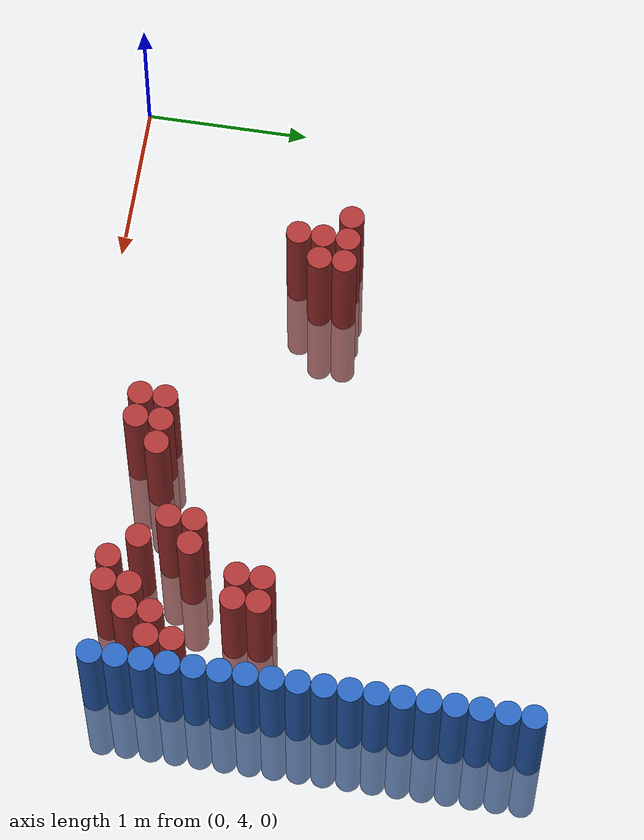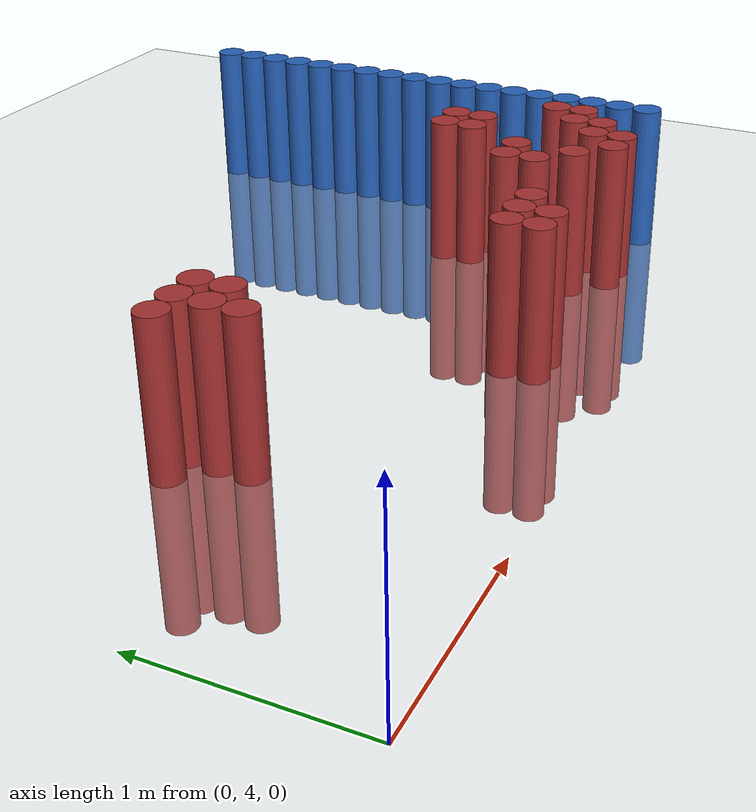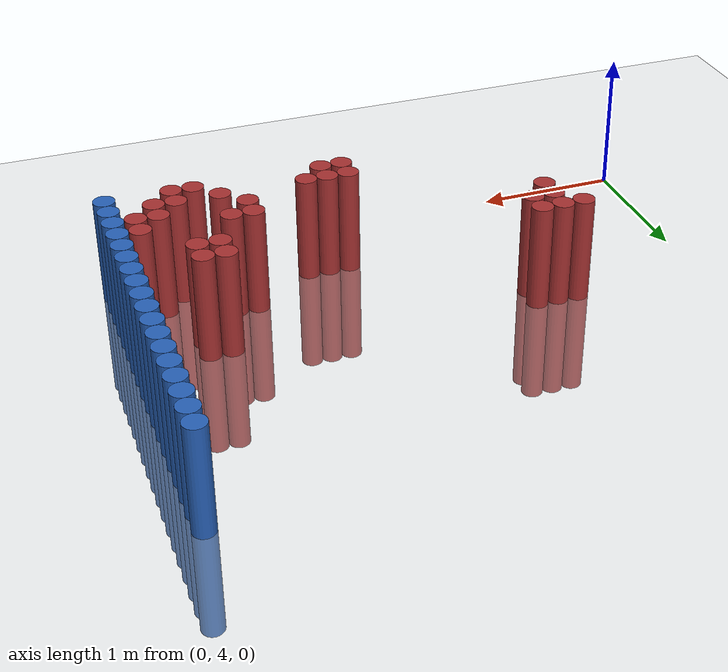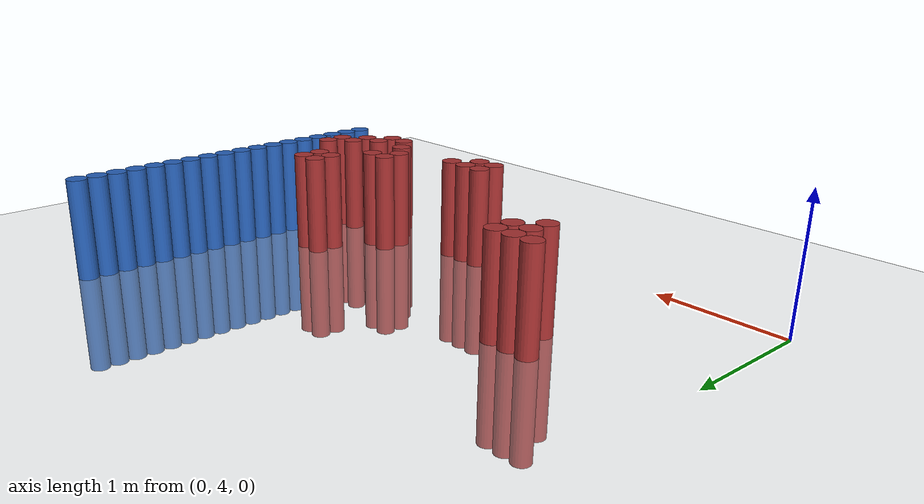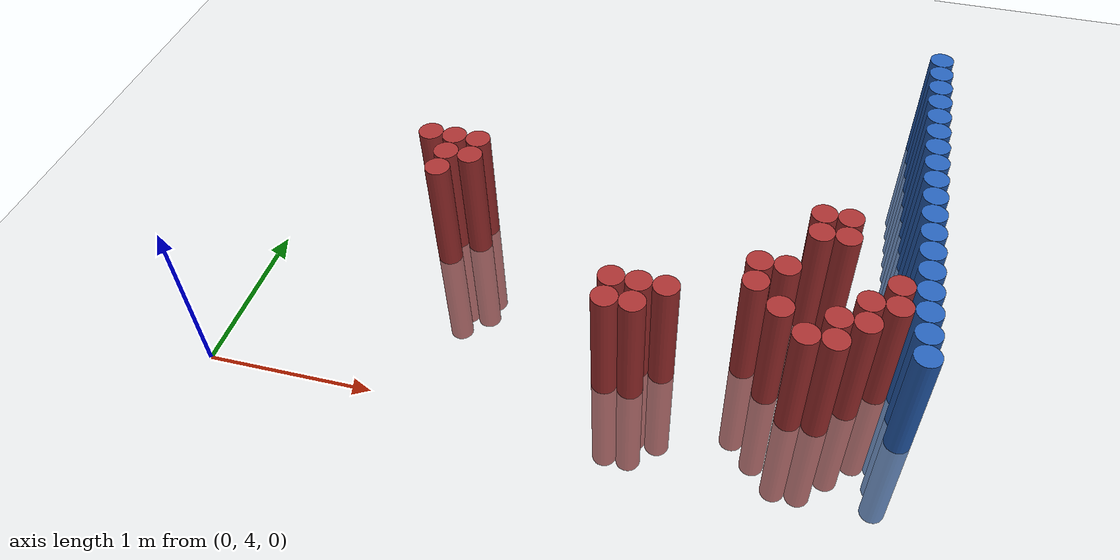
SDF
<sdf version="1.6">
 <world name="default">
  <model name="ground_plane">
   <static>1</static>
   <link name="link">
    <collision name="collision">
     <geometry><plane><normal>0 0 1</normal><size>100 100</size></plane></geometry>
     <surface><friction><ode><mu>100</mu><mu2>50</mu2></ode></friction></surface>
    </collision>
    <visual name="visual">
     <cast_shadows>0</cast_shadows>
     <geometry><plane><normal>0 0 1</normal><size>100 100</size></plane></geometry>
     <material>
      <script><uri>file://media/materials/scripts/gazebo.material</uri><name>Gazebo/Grey</name></script>
     </material>
    </visual>
   </link>
  </model>
  <model name="unit_cylinder_172">
   <static>1</static>
   <pose>3.925000 4.375000 0.000000 0.000000 0.000000 0.000000</pose>
   <link name="link">
    <inertial>
     <mass>1</mass>
     <inertia><ixx>0.145833</ixx><ixy>0</ixy><ixz>0</ixz><iyy>0.145833</iyy><iyz>0</iyz><izz>0.125</izz></inertia>
    </inertial>
    <collision name="collision">
     <geometry><cylinder><radius>0.075000</radius><length>1.5</length></cylinder></geometry>
    </collision>
    <visual name="visual">
     <geometry><cylinder><radius>0.075000</radius><length>1.5</length></cylinder></geometry>
     <material>
      <ambient>0.152000 0.379000 0.720000 1</ambient>
      <diffuse>0.152000 0.379000 0.720000 1</diffuse>
     </material>
     <material>
      <script><name>Gazebo/Grey</name><uri>file://media/materials/scripts/gazebo.material</uri></script>
     </material>
    </visual>
   </link>
  </model>
  <model name="unit_cylinder_174">
   <static>1</static>
   <pose>3.925000 4.525000 0.000000 0.000000 0.000000 0.000000</pose>
   <link name="link">
    <inertial>
     <mass>1</mass>
     <inertia><ixx>0.145833</ixx><ixy>0</ixy><ixz>0</ixz><iyy>0.145833</iyy><iyz>0</iyz><izz>0.125</izz></inertia>
    </inertial>
    <collision name="collision">
     <geometry><cylinder><radius>0.075000</radius><length>1.5</length></cylinder></geometry>
    </collision>
    <visual name="visual">
     <geometry><cylinder><radius>0.075000</radius><length>1.5</length></cylinder></geometry>
     <material>
      <ambient>0.152000 0.379000 0.720000 1</ambient>
      <diffuse>0.152000 0.379000 0.720000 1</diffuse>
     </material>
     <material>
      <script><name>Gazebo/Grey</name><uri>file://media/materials/scripts/gazebo.material</uri></script>
     </material>
    </visual>
   </link>
  </model>
  <model name="unit_cylinder_176">
   <static>1</static>
   <pose>3.925000 4.675000 0.000000 0.000000 0.000000 0.000000</pose>
   <link name="link">
    <inertial>
     <mass>1</mass>
     <inertia><ixx>0.145833</ixx><ixy>0</ixy><ixz>0</ixz><iyy>0.145833</iyy><iyz>0</iyz><izz>0.125</izz></inertia>
    </inertial>
    <collision name="collision">
     <geometry><cylinder><radius>0.075000</radius><length>1.5</length></cylinder></geometry>
    </collision>
    <visual name="visual">
     <geometry><cylinder><radius>0.075000</radius><length>1.5</length></cylinder></geometry>
     <material>
      <ambient>0.152000 0.379000 0.720000 1</ambient>
      <diffuse>0.152000 0.379000 0.720000 1</diffuse>
     </material>
     <material>
      <script><name>Gazebo/Grey</name><uri>file://media/materials/scripts/gazebo.material</uri></script>
     </material>
    </visual>
   </link>
  </model>
  <model name="unit_cylinder_178">
   <static>1</static>
   <pose>3.925000 4.825000 0.000000 0.000000 0.000000 0.000000</pose>
   <link name="link">
    <inertial>
     <mass>1</mass>
     <inertia><ixx>0.145833</ixx><ixy>0</ixy><ixz>0</ixz><iyy>0.145833</iyy><iyz>0</iyz><izz>0.125</izz></inertia>
    </inertial>
    <collision name="collision">
     <geometry><cylinder><radius>0.075000</radius><length>1.5</length></cylinder></geometry>
    </collision>
    <visual name="visual">
     <geometry><cylinder><radius>0.075000</radius><length>1.5</length></cylinder></geometry>
     <material>
      <ambient>0.152000 0.379000 0.720000 1</ambient>
      <diffuse>0.152000 0.379000 0.720000 1</diffuse>
     </material>
     <material>
      <script><name>Gazebo/Grey</name><uri>file://media/materials/scripts/gazebo.material</uri></script>
     </material>
    </visual>
   </link>
  </model>
  <model name="unit_cylinder_180">
   <static>1</static>
   <pose>3.925000 4.975000 0.000000 0.000000 0.000000 0.000000</pose>
   <link name="link">
    <inertial>
     <mass>1</mass>
     <inertia><ixx>0.145833</ixx><ixy>0</ixy><ixz>0</ixz><iyy>0.145833</iyy><iyz>0</iyz><izz>0.125</izz></inertia>
    </inertial>
    <collision name="collision">
     <geometry><cylinder><radius>0.075000</radius><length>1.5</length></cylinder></geometry>
    </collision>
    <visual name="visual">
     <geometry><cylinder><radius>0.075000</radius><length>1.5</length></cylinder></geometry>
     <material>
      <ambient>0.152000 0.379000 0.720000 1</ambient>
      <diffuse>0.152000 0.379000 0.720000 1</diffuse>
     </material>
     <material>
      <script><name>Gazebo/Grey</name><uri>file://media/materials/scripts/gazebo.material</uri></script>
     </material>
    </visual>
   </link>
  </model>
  <model name="unit_cylinder_182">
   <static>1</static>
   <pose>3.925000 5.125000 0.000000 0.000000 0.000000 0.000000</pose>
   <link name="link">
    <inertial>
     <mass>1</mass>
     <inertia><ixx>0.145833</ixx><ixy>0</ixy><ixz>0</ixz><iyy>0.145833</iyy><iyz>0</iyz><izz>0.125</izz></inertia>
    </inertial>
    <collision name="collision">
     <geometry><cylinder><radius>0.075000</radius><length>1.5</length></cylinder></geometry>
    </collision>
    <visual name="visual">
     <geometry><cylinder><radius>0.075000</radius><length>1.5</length></cylinder></geometry>
     <material>
      <ambient>0.152000 0.379000 0.720000 1</ambient>
      <diffuse>0.152000 0.379000 0.720000 1</diffuse>
     </material>
     <material>
      <script><name>Gazebo/Grey</name><uri>file://media/materials/scripts/gazebo.material</uri></script>
     </material>
    </visual>
   </link>
  </model>
  <model name="unit_cylinder_184">
   <static>1</static>
   <pose>3.925000 5.275000 0.000000 0.000000 0.000000 0.000000</pose>
   <link name="link">
    <inertial>
     <mass>1</mass>
     <inertia><ixx>0.145833</ixx><ixy>0</ixy><ixz>0</ixz><iyy>0.145833</iyy><iyz>0</iyz><izz>0.125</izz></inertia>
    </inertial>
    <collision name="collision">
     <geometry><cylinder><radius>0.075000</radius><length>1.5</length></cylinder></geometry>
    </collision>
    <visual name="visual">
     <geometry><cylinder><radius>0.075000</radius><length>1.5</length></cylinder></geometry>
     <material>
      <ambient>0.152000 0.379000 0.720000 1</ambient>
      <diffuse>0.152000 0.379000 0.720000 1</diffuse>
     </material>
     <material>
      <script><name>Gazebo/Grey</name><uri>file://media/materials/scripts/gazebo.material</uri></script>
     </material>
    </visual>
   </link>
  </model>
  <model name="unit_cylinder_186">
   <static>1</static>
   <pose>3.925000 5.425000 0.000000 0.000000 0.000000 0.000000</pose>
   <link name="link">
    <inertial>
     <mass>1</mass>
     <inertia><ixx>0.145833</ixx><ixy>0</ixy><ixz>0</ixz><iyy>0.145833</iyy><iyz>0</iyz><izz>0.125</izz></inertia>
    </inertial>
    <collision name="collision">
     <geometry><cylinder><radius>0.075000</radius><length>1.5</length></cylinder></geometry>
    </collision>
    <visual name="visual">
     <geometry><cylinder><radius>0.075000</radius><length>1.5</length></cylinder></geometry>
     <material>
      <ambient>0.152000 0.379000 0.720000 1</ambient>
      <diffuse>0.152000 0.379000 0.720000 1</diffuse>
     </material>
     <material>
      <script><name>Gazebo/Grey</name><uri>file://media/materials/scripts/gazebo.material</uri></script>
     </material>
    </visual>
   </link>
  </model>
  <model name="unit_cylinder_188">
   <static>1</static>
   <pose>3.925000 5.575000 0.000000 0.000000 0.000000 0.000000</pose>
   <link name="link">
    <inertial>
     <mass>1</mass>
     <inertia><ixx>0.145833</ixx><ixy>0</ixy><ixz>0</ixz><iyy>0.145833</iyy><iyz>0</iyz><izz>0.125</izz></inertia>
    </inertial>
    <collision name="collision">
     <geometry><cylinder><radius>0.075000</radius><length>1.5</length></cylinder></geometry>
    </collision>
    <visual name="visual">
     <geometry><cylinder><radius>0.075000</radius><length>1.5</length></cylinder></geometry>
     <material>
      <ambient>0.152000 0.379000 0.720000 1</ambient>
      <diffuse>0.152000 0.379000 0.720000 1</diffuse>
     </material>
     <material>
      <script><name>Gazebo/Grey</name><uri>file://media/materials/scripts/gazebo.material</uri></script>
     </material>
    </visual>
   </link>
  </model>
  <model name="unit_cylinder_190">
   <static>1</static>
   <pose>3.925000 5.725000 0.000000 0.000000 0.000000 0.000000</pose>
   <link name="link">
    <inertial>
     <mass>1</mass>
     <inertia><ixx>0.145833</ixx><ixy>0</ixy><ixz>0</ixz><iyy>0.145833</iyy><iyz>0</iyz><izz>0.125</izz></inertia>
    </inertial>
    <collision name="collision">
     <geometry><cylinder><radius>0.075000</radius><length>1.5</length></cylinder></geometry>
    </collision>
    <visual name="visual">
     <geometry><cylinder><radius>0.075000</radius><length>1.5</length></cylinder></geometry>
     <material>
      <ambient>0.152000 0.379000 0.720000 1</ambient>
      <diffuse>0.152000 0.379000 0.720000 1</diffuse>
     </material>
     <material>
      <script><name>Gazebo/Grey</name><uri>file://media/materials/scripts/gazebo.material</uri></script>
     </material>
    </visual>
   </link>
  </model>
  <model name="unit_cylinder_192">
   <static>1</static>
   <pose>3.925000 5.875000 0.000000 0.000000 0.000000 0.000000</pose>
   <link name="link">
    <inertial>
     <mass>1</mass>
     <inertia><ixx>0.145833</ixx><ixy>0</ixy><ixz>0</ixz><iyy>0.145833</iyy><iyz>0</iyz><izz>0.125</izz></inertia>
    </inertial>
    <collision name="collision">
     <geometry><cylinder><radius>0.075000</radius><length>1.5</length></cylinder></geometry>
    </collision>
    <visual name="visual">
     <geometry><cylinder><radius>0.075000</radius><length>1.5</length></cylinder></geometry>
     <material>
      <ambient>0.152000 0.379000 0.720000 1</ambient>
      <diffuse>0.152000 0.379000 0.720000 1</diffuse>
     </material>
     <material>
      <script><name>Gazebo/Grey</name><uri>file://media/materials/scripts/gazebo.material</uri></script>
     </material>
    </visual>
   </link>
  </model>
  <model name="unit_cylinder_194">
   <static>1</static>
   <pose>3.925000 6.025000 0.000000 0.000000 0.000000 0.000000</pose>
   <link name="link">
    <inertial>
     <mass>1</mass>
     <inertia><ixx>0.145833</ixx><ixy>0</ixy><ixz>0</ixz><iyy>0.145833</iyy><iyz>0</iyz><izz>0.125</izz></inertia>
    </inertial>
    <collision name="collision">
     <geometry><cylinder><radius>0.075000</radius><length>1.5</length></cylinder></geometry>
    </collision>
    <visual name="visual">
     <geometry><cylinder><radius>0.075000</radius><length>1.5</length></cylinder></geometry>
     <material>
      <ambient>0.152000 0.379000 0.720000 1</ambient>
      <diffuse>0.152000 0.379000 0.720000 1</diffuse>
     </material>
     <material>
      <script><name>Gazebo/Grey</name><uri>file://media/materials/scripts/gazebo.material</uri></script>
     </material>
    </visual>
   </link>
  </model>
  <model name="unit_cylinder_196">
   <static>1</static>
   <pose>3.925000 6.175000 0.000000 0.000000 0.000000 0.000000</pose>
   <link name="link">
    <inertial>
     <mass>1</mass>
     <inertia><ixx>0.145833</ixx><ixy>0</ixy><ixz>0</ixz><iyy>0.145833</iyy><iyz>0</iyz><izz>0.125</izz></inertia>
    </inertial>
    <collision name="collision">
     <geometry><cylinder><radius>0.075000</radius><length>1.5</length></cylinder></geometry>
    </collision>
    <visual name="visual">
     <geometry><cylinder><radius>0.075000</radius><length>1.5</length></cylinder></geometry>
     <material>
      <ambient>0.152000 0.379000 0.720000 1</ambient>
      <diffuse>0.152000 0.379000 0.720000 1</diffuse>
     </material>
     <material>
      <script><name>Gazebo/Grey</name><uri>file://media/materials/scripts/gazebo.material</uri></script>
     </material>
    </visual>
   </link>
  </model>
  <model name="unit_cylinder_198">
   <static>1</static>
   <pose>3.925000 6.325000 0.000000 0.000000 0.000000 0.000000</pose>
   <link name="link">
    <inertial>
     <mass>1</mass>
     <inertia><ixx>0.145833</ixx><ixy>0</ixy><ixz>0</ixz><iyy>0.145833</iyy><iyz>0</iyz><izz>0.125</izz></inertia>
    </inertial>
    <collision name="collision">
     <geometry><cylinder><radius>0.075000</radius><length>1.5</length></cylinder></geometry>
    </collision>
    <visual name="visual">
     <geometry><cylinder><radius>0.075000</radius><length>1.5</length></cylinder></geometry>
     <material>
      <ambient>0.152000 0.379000 0.720000 1</ambient>
      <diffuse>0.152000 0.379000 0.720000 1</diffuse>
     </material>
     <material>
      <script><name>Gazebo/Grey</name><uri>file://media/materials/scripts/gazebo.material</uri></script>
     </material>
    </visual>
   </link>
  </model>
  <model name="unit_cylinder_200">
   <static>1</static>
   <pose>3.925000 6.475000 0.000000 0.000000 0.000000 0.000000</pose>
   <link name="link">
    <inertial>
     <mass>1</mass>
     <inertia><ixx>0.145833</ixx><ixy>0</ixy><ixz>0</ixz><iyy>0.145833</iyy><iyz>0</iyz><izz>0.125</izz></inertia>
    </inertial>
    <collision name="collision">
     <geometry><cylinder><radius>0.075000</radius><length>1.5</length></cylinder></geometry>
    </collision>
    <visual name="visual">
     <geometry><cylinder><radius>0.075000</radius><length>1.5</length></cylinder></geometry>
     <material>
      <ambient>0.152000 0.379000 0.720000 1</ambient>
      <diffuse>0.152000 0.379000 0.720000 1</diffuse>
     </material>
     <material>
      <script><name>Gazebo/Grey</name><uri>file://media/materials/scripts/gazebo.material</uri></script>
     </material>
    </visual>
   </link>
  </model>
  <model name="unit_cylinder_202">
   <static>1</static>
   <pose>3.925000 6.625000 0.000000 0.000000 0.000000 0.000000</pose>
   <link name="link">
    <inertial>
     <mass>1</mass>
     <inertia><ixx>0.145833</ixx><ixy>0</ixy><ixz>0</ixz><iyy>0.145833</iyy><iyz>0</iyz><izz>0.125</izz></inertia>
    </inertial>
    <collision name="collision">
     <geometry><cylinder><radius>0.075000</radius><length>1.5</length></cylinder></geometry>
    </collision>
    <visual name="visual">
     <geometry><cylinder><radius>0.075000</radius><length>1.5</length></cylinder></geometry>
     <material>
      <ambient>0.152000 0.379000 0.720000 1</ambient>
      <diffuse>0.152000 0.379000 0.720000 1</diffuse>
     </material>
     <material>
      <script><name>Gazebo/Grey</name><uri>file://media/materials/scripts/gazebo.material</uri></script>
     </material>
    </visual>
   </link>
  </model>
  <model name="unit_cylinder_204">
   <static>1</static>
   <pose>3.925000 6.775000 0.000000 0.000000 0.000000 0.000000</pose>
   <link name="link">
    <inertial>
     <mass>1</mass>
     <inertia><ixx>0.145833</ixx><ixy>0</ixy><ixz>0</ixz><iyy>0.145833</iyy><iyz>0</iyz><izz>0.125</izz></inertia>
    </inertial>
    <collision name="collision">
     <geometry><cylinder><radius>0.075000</radius><length>1.5</length></cylinder></geometry>
    </collision>
    <visual name="visual">
     <geometry><cylinder><radius>0.075000</radius><length>1.5</length></cylinder></geometry>
     <material>
      <ambient>0.152000 0.379000 0.720000 1</ambient>
      <diffuse>0.152000 0.379000 0.720000 1</diffuse>
     </material>
     <material>
      <script><name>Gazebo/Grey</name><uri>file://media/materials/scripts/gazebo.material</uri></script>
     </material>
    </visual>
   </link>
  </model>
  <model name="unit_cylinder_206">
   <static>1</static>
   <pose>3.925000 6.925000 0.000000 0.000000 0.000000 0.000000</pose>
   <link name="link">
    <inertial>
     <mass>1</mass>
     <inertia><ixx>0.145833</ixx><ixy>0</ixy><ixz>0</ixz><iyy>0.145833</iyy><iyz>0</iyz><izz>0.125</izz></inertia>
    </inertial>
    <collision name="collision">
     <geometry><cylinder><radius>0.075000</radius><length>1.5</length></cylinder></geometry>
    </collision>
    <visual name="visual">
     <geometry><cylinder><radius>0.075000</radius><length>1.5</length></cylinder></geometry>
     <material>
      <ambient>0.152000 0.379000 0.720000 1</ambient>
      <diffuse>0.152000 0.379000 0.720000 1</diffuse>
     </material>
     <material>
      <script><name>Gazebo/Grey</name><uri>file://media/materials/scripts/gazebo.material</uri></script>
     </material>
    </visual>
   </link>
  </model>
  <model name="unit_cylinder_409">
   <static>1</static>
   <pose>0.925000 5.425000 0.000000 0.000000 0.000000 0.000000</pose>
   <link name="link">
    <inertial>
     <mass>1</mass>
     <inertia><ixx>0.145833</ixx><ixy>0</ixy><ixz>0</ixz><iyy>0.145833</iyy><iyz>0</iyz><izz>0.125</izz></inertia>
    </inertial>
    <collision name="collision">
     <geometry><cylinder><radius>0.075000</radius><length>1.5</length></cylinder></geometry>
    </collision>
    <visual name="visual">
     <geometry><cylinder><radius>0.075000</radius><length>1.5</length></cylinder></geometry>
     <material>
      <ambient>0.648000 0.192000 0.192000 1</ambient>
      <diffuse>0.648000 0.192000 0.192000 1</diffuse>
     </material>
     <material>
      <script><name>Gazebo/Grey</name><uri>file://media/materials/scripts/gazebo.material</uri></script>
     </material>
    </visual>
   </link>
  </model>
  <model name="unit_cylinder_411">
   <static>1</static>
   <pose>1.075000 5.125000 0.000000 0.000000 0.000000 0.000000</pose>
   <link name="link">
    <inertial>
     <mass>1</mass>
     <inertia><ixx>0.145833</ixx><ixy>0</ixy><ixz>0</ixz><iyy>0.145833</iyy><iyz>0</iyz><izz>0.125</izz></inertia>
    </inertial>
    <collision name="collision">
     <geometry><cylinder><radius>0.075000</radius><length>1.5</length></cylinder></geometry>
    </collision>
    <visual name="visual">
     <geometry><cylinder><radius>0.075000</radius><length>1.5</length></cylinder></geometry>
     <material>
      <ambient>0.648000 0.192000 0.192000 1</ambient>
      <diffuse>0.648000 0.192000 0.192000 1</diffuse>
     </material>
     <material>
      <script><name>Gazebo/Grey</name><uri>file://media/materials/scripts/gazebo.material</uri></script>
     </material>
    </visual>
   </link>
  </model>
  <model name="unit_cylinder_412">
   <static>1</static>
   <pose>1.075000 5.275000 0.000000 0.000000 0.000000 0.000000</pose>
   <link name="link">
    <inertial>
     <mass>1</mass>
     <inertia><ixx>0.145833</ixx><ixy>0</ixy><ixz>0</ixz><iyy>0.145833</iyy><iyz>0</iyz><izz>0.125</izz></inertia>
    </inertial>
    <collision name="collision">
     <geometry><cylinder><radius>0.075000</radius><length>1.5</length></cylinder></geometry>
    </collision>
    <visual name="visual">
     <geometry><cylinder><radius>0.075000</radius><length>1.5</length></cylinder></geometry>
     <material>
      <ambient>0.648000 0.192000 0.192000 1</ambient>
      <diffuse>0.648000 0.192000 0.192000 1</diffuse>
     </material>
     <material>
      <script><name>Gazebo/Grey</name><uri>file://media/materials/scripts/gazebo.material</uri></script>
     </material>
    </visual>
   </link>
  </model>
  <model name="unit_cylinder_413">
   <static>1</static>
   <pose>1.075000 5.425000 0.000000 0.000000 0.000000 0.000000</pose>
   <link name="link">
    <inertial>
     <mass>1</mass>
     <inertia><ixx>0.145833</ixx><ixy>0</ixy><ixz>0</ixz><iyy>0.145833</iyy><iyz>0</iyz><izz>0.125</izz></inertia>
    </inertial>
    <collision name="collision">
     <geometry><cylinder><radius>0.075000</radius><length>1.5</length></cylinder></geometry>
    </collision>
    <visual name="visual">
     <geometry><cylinder><radius>0.075000</radius><length>1.5</length></cylinder></geometry>
     <material>
      <ambient>0.648000 0.192000 0.192000 1</ambient>
      <diffuse>0.648000 0.192000 0.192000 1</diffuse>
     </material>
     <material>
      <script><name>Gazebo/Grey</name><uri>file://media/materials/scripts/gazebo.material</uri></script>
     </material>
    </visual>
   </link>
  </model>
  <model name="unit_cylinder_418">
   <static>1</static>
   <pose>1.225000 5.275000 0.000000 0.000000 0.000000 0.000000</pose>
   <link name="link">
    <inertial>
     <mass>1</mass>
     <inertia><ixx>0.145833</ixx><ixy>0</ixy><ixz>0</ixz><iyy>0.145833</iyy><iyz>0</iyz><izz>0.125</izz></inertia>
    </inertial>
    <collision name="collision">
     <geometry><cylinder><radius>0.075000</radius><length>1.5</length></cylinder></geometry>
    </collision>
    <visual name="visual">
     <geometry><cylinder><radius>0.075000</radius><length>1.5</length></cylinder></geometry>
     <material>
      <ambient>0.648000 0.192000 0.192000 1</ambient>
      <diffuse>0.648000 0.192000 0.192000 1</diffuse>
     </material>
     <material>
      <script><name>Gazebo/Grey</name><uri>file://media/materials/scripts/gazebo.material</uri></script>
     </material>
    </visual>
   </link>
  </model>
  <model name="unit_cylinder_419">
   <static>1</static>
   <pose>1.225000 5.425000 0.000000 0.000000 0.000000 0.000000</pose>
   <link name="link">
    <inertial>
     <mass>1</mass>
     <inertia><ixx>0.145833</ixx><ixy>0</ixy><ixz>0</ixz><iyy>0.145833</iyy><iyz>0</iyz><izz>0.125</izz></inertia>
    </inertial>
    <collision name="collision">
     <geometry><cylinder><radius>0.075000</radius><length>1.5</length></cylinder></geometry>
    </collision>
    <visual name="visual">
     <geometry><cylinder><radius>0.075000</radius><length>1.5</length></cylinder></geometry>
     <material>
      <ambient>0.648000 0.192000 0.192000 1</ambient>
      <diffuse>0.648000 0.192000 0.192000 1</diffuse>
     </material>
     <material>
      <script><name>Gazebo/Grey</name><uri>file://media/materials/scripts/gazebo.material</uri></script>
     </material>
    </visual>
   </link>
  </model>
  <model name="unit_cylinder_470">
   <static>1</static>
   <pose>2.275000 4.375000 0.000000 0.000000 0.000000 0.000000</pose>
   <link name="link">
    <inertial>
     <mass>1</mass>
     <inertia><ixx>0.145833</ixx><ixy>0</ixy><ixz>0</ixz><iyy>0.145833</iyy><iyz>0</iyz><izz>0.125</izz></inertia>
    </inertial>
    <collision name="collision">
     <geometry><cylinder><radius>0.075000</radius><length>1.5</length></cylinder></geometry>
    </collision>
    <visual name="visual">
     <geometry><cylinder><radius>0.075000</radius><length>1.5</length></cylinder></geometry>
     <material>
      <ambient>0.648000 0.192000 0.192000 1</ambient>
      <diffuse>0.648000 0.192000 0.192000 1</diffuse>
     </material>
     <material>
      <script><name>Gazebo/Grey</name><uri>file://media/materials/scripts/gazebo.material</uri></script>
     </material>
    </visual>
   </link>
  </model>
  <model name="unit_cylinder_471">
   <static>1</static>
   <pose>2.275000 4.525000 0.000000 0.000000 0.000000 0.000000</pose>
   <link name="link">
    <inertial>
     <mass>1</mass>
     <inertia><ixx>0.145833</ixx><ixy>0</ixy><ixz>0</ixz><iyy>0.145833</iyy><iyz>0</iyz><izz>0.125</izz></inertia>
    </inertial>
    <collision name="collision">
     <geometry><cylinder><radius>0.075000</radius><length>1.5</length></cylinder></geometry>
    </collision>
    <visual name="visual">
     <geometry><cylinder><radius>0.075000</radius><length>1.5</length></cylinder></geometry>
     <material>
      <ambient>0.648000 0.192000 0.192000 1</ambient>
      <diffuse>0.648000 0.192000 0.192000 1</diffuse>
     </material>
     <material>
      <script><name>Gazebo/Grey</name><uri>file://media/materials/scripts/gazebo.material</uri></script>
     </material>
    </visual>
   </link>
  </model>
  <model name="unit_cylinder_484">
   <static>1</static>
   <pose>2.425000 4.375000 0.000000 0.000000 0.000000 0.000000</pose>
   <link name="link">
    <inertial>
     <mass>1</mass>
     <inertia><ixx>0.145833</ixx><ixy>0</ixy><ixz>0</ixz><iyy>0.145833</iyy><iyz>0</iyz><izz>0.125</izz></inertia>
    </inertial>
    <collision name="collision">
     <geometry><cylinder><radius>0.075000</radius><length>1.5</length></cylinder></geometry>
    </collision>
    <visual name="visual">
     <geometry><cylinder><radius>0.075000</radius><length>1.5</length></cylinder></geometry>
     <material>
      <ambient>0.648000 0.192000 0.192000 1</ambient>
      <diffuse>0.648000 0.192000 0.192000 1</diffuse>
     </material>
     <material>
      <script><name>Gazebo/Grey</name><uri>file://media/materials/scripts/gazebo.material</uri></script>
     </material>
    </visual>
   </link>
  </model>
  <model name="unit_cylinder_485">
   <static>1</static>
   <pose>2.425000 4.525000 0.000000 0.000000 0.000000 0.000000</pose>
   <link name="link">
    <inertial>
     <mass>1</mass>
     <inertia><ixx>0.145833</ixx><ixy>0</ixy><ixz>0</ixz><iyy>0.145833</iyy><iyz>0</iyz><izz>0.125</izz></inertia>
    </inertial>
    <collision name="collision">
     <geometry><cylinder><radius>0.075000</radius><length>1.5</length></cylinder></geometry>
    </collision>
    <visual name="visual">
     <geometry><cylinder><radius>0.075000</radius><length>1.5</length></cylinder></geometry>
     <material>
      <ambient>0.648000 0.192000 0.192000 1</ambient>
      <diffuse>0.648000 0.192000 0.192000 1</diffuse>
     </material>
     <material>
      <script><name>Gazebo/Grey</name><uri>file://media/materials/scripts/gazebo.material</uri></script>
     </material>
    </visual>
   </link>
  </model>
  <model name="unit_cylinder_495">
   <static>1</static>
   <pose>2.575000 4.525000 0.000000 0.000000 0.000000 0.000000</pose>
   <link name="link">
    <inertial>
     <mass>1</mass>
     <inertia><ixx>0.145833</ixx><ixy>0</ixy><ixz>0</ixz><iyy>0.145833</iyy><iyz>0</iyz><izz>0.125</izz></inertia>
    </inertial>
    <collision name="collision">
     <geometry><cylinder><radius>0.075000</radius><length>1.5</length></cylinder></geometry>
    </collision>
    <visual name="visual">
     <geometry><cylinder><radius>0.075000</radius><length>1.5</length></cylinder></geometry>
     <material>
      <ambient>0.648000 0.192000 0.192000 1</ambient>
      <diffuse>0.648000 0.192000 0.192000 1</diffuse>
     </material>
     <material>
      <script><name>Gazebo/Grey</name><uri>file://media/materials/scripts/gazebo.material</uri></script>
     </material>
    </visual>
   </link>
  </model>
  <model name="unit_cylinder_505">
   <static>1</static>
   <pose>3.025000 4.675000 0.000000 0.000000 0.000000 0.000000</pose>
   <link name="link">
    <inertial>
     <mass>1</mass>
     <inertia><ixx>0.145833</ixx><ixy>0</ixy><ixz>0</ixz><iyy>0.145833</iyy><iyz>0</iyz><izz>0.125</izz></inertia>
    </inertial>
    <collision name="collision">
     <geometry><cylinder><radius>0.075000</radius><length>1.5</length></cylinder></geometry>
    </collision>
    <visual name="visual">
     <geometry><cylinder><radius>0.075000</radius><length>1.5</length></cylinder></geometry>
     <material>
      <ambient>0.648000 0.192000 0.192000 1</ambient>
      <diffuse>0.648000 0.192000 0.192000 1</diffuse>
     </material>
     <material>
      <script><name>Gazebo/Grey</name><uri>file://media/materials/scripts/gazebo.material</uri></script>
     </material>
    </visual>
   </link>
  </model>
  <model name="unit_cylinder_506">
   <static>1</static>
   <pose>3.025000 4.825000 0.000000 0.000000 0.000000 0.000000</pose>
   <link name="link">
    <inertial>
     <mass>1</mass>
     <inertia><ixx>0.145833</ixx><ixy>0</ixy><ixz>0</ixz><iyy>0.145833</iyy><iyz>0</iyz><izz>0.125</izz></inertia>
    </inertial>
    <collision name="collision">
     <geometry><cylinder><radius>0.075000</radius><length>1.5</length></cylinder></geometry>
    </collision>
    <visual name="visual">
     <geometry><cylinder><radius>0.075000</radius><length>1.5</length></cylinder></geometry>
     <material>
      <ambient>0.648000 0.192000 0.192000 1</ambient>
      <diffuse>0.648000 0.192000 0.192000 1</diffuse>
     </material>
     <material>
      <script><name>Gazebo/Grey</name><uri>file://media/materials/scripts/gazebo.material</uri></script>
     </material>
    </visual>
   </link>
  </model>
  <model name="unit_cylinder_514">
   <static>1</static>
   <pose>3.175000 4.525000 0.000000 0.000000 0.000000 0.000000</pose>
   <link name="link">
    <inertial>
     <mass>1</mass>
     <inertia><ixx>0.145833</ixx><ixy>0</ixy><ixz>0</ixz><iyy>0.145833</iyy><iyz>0</iyz><izz>0.125</izz></inertia>
    </inertial>
    <collision name="collision">
     <geometry><cylinder><radius>0.075000</radius><length>1.5</length></cylinder></geometry>
    </collision>
    <visual name="visual">
     <geometry><cylinder><radius>0.075000</radius><length>1.5</length></cylinder></geometry>
     <material>
      <ambient>0.648000 0.192000 0.192000 1</ambient>
      <diffuse>0.648000 0.192000 0.192000 1</diffuse>
     </material>
     <material>
      <script><name>Gazebo/Grey</name><uri>file://media/materials/scripts/gazebo.material</uri></script>
     </material>
    </visual>
   </link>
  </model>
  <model name="unit_cylinder_515">
   <static>1</static>
   <pose>3.175000 4.825000 0.000000 0.000000 0.000000 0.000000</pose>
   <link name="link">
    <inertial>
     <mass>1</mass>
     <inertia><ixx>0.145833</ixx><ixy>0</ixy><ixz>0</ixz><iyy>0.145833</iyy><iyz>0</iyz><izz>0.125</izz></inertia>
    </inertial>
    <collision name="collision">
     <geometry><cylinder><radius>0.075000</radius><length>1.5</length></cylinder></geometry>
    </collision>
    <visual name="visual">
     <geometry><cylinder><radius>0.075000</radius><length>1.5</length></cylinder></geometry>
     <material>
      <ambient>0.648000 0.192000 0.192000 1</ambient>
      <diffuse>0.648000 0.192000 0.192000 1</diffuse>
     </material>
     <material>
      <script><name>Gazebo/Grey</name><uri>file://media/materials/scripts/gazebo.material</uri></script>
     </material>
    </visual>
   </link>
  </model>
  <model name="unit_cylinder_523">
   <static>1</static>
   <pose>3.325000 4.375000 0.000000 0.000000 0.000000 0.000000</pose>
   <link name="link">
    <inertial>
     <mass>1</mass>
     <inertia><ixx>0.145833</ixx><ixy>0</ixy><ixz>0</ixz><iyy>0.145833</iyy><iyz>0</iyz><izz>0.125</izz></inertia>
    </inertial>
    <collision name="collision">
     <geometry><cylinder><radius>0.075000</radius><length>1.5</length></cylinder></geometry>
    </collision>
    <visual name="visual">
     <geometry><cylinder><radius>0.075000</radius><length>1.5</length></cylinder></geometry>
     <material>
      <ambient>0.648000 0.192000 0.192000 1</ambient>
      <diffuse>0.648000 0.192000 0.192000 1</diffuse>
     </material>
     <material>
      <script><name>Gazebo/Grey</name><uri>file://media/materials/scripts/gazebo.material</uri></script>
     </material>
    </visual>
   </link>
  </model>
  <model name="unit_cylinder_524">
   <static>1</static>
   <pose>3.325000 5.125000 0.000000 0.000000 0.000000 0.000000</pose>
   <link name="link">
    <inertial>
     <mass>1</mass>
     <inertia><ixx>0.145833</ixx><ixy>0</ixy><ixz>0</ixz><iyy>0.145833</iyy><iyz>0</iyz><izz>0.125</izz></inertia>
    </inertial>
    <collision name="collision">
     <geometry><cylinder><radius>0.075000</radius><length>1.5</length></cylinder></geometry>
    </collision>
    <visual name="visual">
     <geometry><cylinder><radius>0.075000</radius><length>1.5</length></cylinder></geometry>
     <material>
      <ambient>0.648000 0.192000 0.192000 1</ambient>
      <diffuse>0.648000 0.192000 0.192000 1</diffuse>
     </material>
     <material>
      <script><name>Gazebo/Grey</name><uri>file://media/materials/scripts/gazebo.material</uri></script>
     </material>
    </visual>
   </link>
  </model>
  <model name="unit_cylinder_525">
   <static>1</static>
   <pose>3.325000 5.275000 0.000000 0.000000 0.000000 0.000000</pose>
   <link name="link">
    <inertial>
     <mass>1</mass>
     <inertia><ixx>0.145833</ixx><ixy>0</ixy><ixz>0</ixz><iyy>0.145833</iyy><iyz>0</iyz><izz>0.125</izz></inertia>
    </inertial>
    <collision name="collision">
     <geometry><cylinder><radius>0.075000</radius><length>1.5</length></cylinder></geometry>
    </collision>
    <visual name="visual">
     <geometry><cylinder><radius>0.075000</radius><length>1.5</length></cylinder></geometry>
     <material>
      <ambient>0.648000 0.192000 0.192000 1</ambient>
      <diffuse>0.648000 0.192000 0.192000 1</diffuse>
     </material>
     <material>
      <script><name>Gazebo/Grey</name><uri>file://media/materials/scripts/gazebo.material</uri></script>
     </material>
    </visual>
   </link>
  </model>
  <model name="unit_cylinder_535">
   <static>1</static>
   <pose>3.475000 4.375000 0.000000 0.000000 0.000000 0.000000</pose>
   <link name="link">
    <inertial>
     <mass>1</mass>
     <inertia><ixx>0.145833</ixx><ixy>0</ixy><ixz>0</ixz><iyy>0.145833</iyy><iyz>0</iyz><izz>0.125</izz></inertia>
    </inertial>
    <collision name="collision">
     <geometry><cylinder><radius>0.075000</radius><length>1.5</length></cylinder></geometry>
    </collision>
    <visual name="visual">
     <geometry><cylinder><radius>0.075000</radius><length>1.5</length></cylinder></geometry>
     <material>
      <ambient>0.648000 0.192000 0.192000 1</ambient>
      <diffuse>0.648000 0.192000 0.192000 1</diffuse>
     </material>
     <material>
      <script><name>Gazebo/Grey</name><uri>file://media/materials/scripts/gazebo.material</uri></script>
     </material>
    </visual>
   </link>
  </model>
  <model name="unit_cylinder_536">
   <static>1</static>
   <pose>3.475000 4.525000 0.000000 0.000000 0.000000 0.000000</pose>
   <link name="link">
    <inertial>
     <mass>1</mass>
     <inertia><ixx>0.145833</ixx><ixy>0</ixy><ixz>0</ixz><iyy>0.145833</iyy><iyz>0</iyz><izz>0.125</izz></inertia>
    </inertial>
    <collision name="collision">
     <geometry><cylinder><radius>0.075000</radius><length>1.5</length></cylinder></geometry>
    </collision>
    <visual name="visual">
     <geometry><cylinder><radius>0.075000</radius><length>1.5</length></cylinder></geometry>
     <material>
      <ambient>0.648000 0.192000 0.192000 1</ambient>
      <diffuse>0.648000 0.192000 0.192000 1</diffuse>
     </material>
     <material>
      <script><name>Gazebo/Grey</name><uri>file://media/materials/scripts/gazebo.material</uri></script>
     </material>
    </visual>
   </link>
  </model>
  <model name="unit_cylinder_537">
   <static>1</static>
   <pose>3.475000 5.125000 0.000000 0.000000 0.000000 0.000000</pose>
   <link name="link">
    <inertial>
     <mass>1</mass>
     <inertia><ixx>0.145833</ixx><ixy>0</ixy><ixz>0</ixz><iyy>0.145833</iyy><iyz>0</iyz><izz>0.125</izz></inertia>
    </inertial>
    <collision name="collision">
     <geometry><cylinder><radius>0.075000</radius><length>1.5</length></cylinder></geometry>
    </collision>
    <visual name="visual">
     <geometry><cylinder><radius>0.075000</radius><length>1.5</length></cylinder></geometry>
     <material>
      <ambient>0.648000 0.192000 0.192000 1</ambient>
      <diffuse>0.648000 0.192000 0.192000 1</diffuse>
     </material>
     <material>
      <script><name>Gazebo/Grey</name><uri>file://media/materials/scripts/gazebo.material</uri></script>
     </material>
    </visual>
   </link>
  </model>
  <model name="unit_cylinder_538">
   <static>1</static>
   <pose>3.475000 5.275000 0.000000 0.000000 0.000000 0.000000</pose>
   <link name="link">
    <inertial>
     <mass>1</mass>
     <inertia><ixx>0.145833</ixx><ixy>0</ixy><ixz>0</ixz><iyy>0.145833</iyy><iyz>0</iyz><izz>0.125</izz></inertia>
    </inertial>
    <collision name="collision">
     <geometry><cylinder><radius>0.075000</radius><length>1.5</length></cylinder></geometry>
    </collision>
    <visual name="visual">
     <geometry><cylinder><radius>0.075000</radius><length>1.5</length></cylinder></geometry>
     <material>
      <ambient>0.648000 0.192000 0.192000 1</ambient>
      <diffuse>0.648000 0.192000 0.192000 1</diffuse>
     </material>
     <material>
      <script><name>Gazebo/Grey</name><uri>file://media/materials/scripts/gazebo.material</uri></script>
     </material>
    </visual>
   </link>
  </model>
  <model name="unit_cylinder_549">
   <static>1</static>
   <pose>3.625000 4.525000 0.000000 0.000000 0.000000 0.000000</pose>
   <link name="link">
    <inertial>
     <mass>1</mass>
     <inertia><ixx>0.145833</ixx><ixy>0</ixy><ixz>0</ixz><iyy>0.145833</iyy><iyz>0</iyz><izz>0.125</izz></inertia>
    </inertial>
    <collision name="collision">
     <geometry><cylinder><radius>0.075000</radius><length>1.5</length></cylinder></geometry>
    </collision>
    <visual name="visual">
     <geometry><cylinder><radius>0.075000</radius><length>1.5</length></cylinder></geometry>
     <material>
      <ambient>0.648000 0.192000 0.192000 1</ambient>
      <diffuse>0.648000 0.192000 0.192000 1</diffuse>
     </material>
     <material>
      <script><name>Gazebo/Grey</name><uri>file://media/materials/scripts/gazebo.material</uri></script>
     </material>
    </visual>
   </link>
  </model>
  <model name="unit_cylinder_550">
   <static>1</static>
   <pose>3.625000 4.675000 0.000000 0.000000 0.000000 0.000000</pose>
   <link name="link">
    <inertial>
     <mass>1</mass>
     <inertia><ixx>0.145833</ixx><ixy>0</ixy><ixz>0</ixz><iyy>0.145833</iyy><iyz>0</iyz><izz>0.125</izz></inertia>
    </inertial>
    <collision name="collision">
     <geometry><cylinder><radius>0.075000</radius><length>1.5</length></cylinder></geometry>
    </collision>
    <visual name="visual">
     <geometry><cylinder><radius>0.075000</radius><length>1.5</length></cylinder></geometry>
     <material>
      <ambient>0.648000 0.192000 0.192000 1</ambient>
      <diffuse>0.648000 0.192000 0.192000 1</diffuse>
     </material>
     <material>
      <script><name>Gazebo/Grey</name><uri>file://media/materials/scripts/gazebo.material</uri></script>
     </material>
    </visual>
   </link>
  </model>
  <model name="unit_cylinder_568">
   <static>1</static>
   <pose>3.775000 4.675000 0.000000 0.000000 0.000000 0.000000</pose>
   <link name="link">
    <inertial>
     <mass>1</mass>
     <inertia><ixx>0.145833</ixx><ixy>0</ixy><ixz>0</ixz><iyy>0.145833</iyy><iyz>0</iyz><izz>0.125</izz></inertia>
    </inertial>
    <collision name="collision">
     <geometry><cylinder><radius>0.075000</radius><length>1.5</length></cylinder></geometry>
    </collision>
    <visual name="visual">
     <geometry><cylinder><radius>0.075000</radius><length>1.5</length></cylinder></geometry>
     <material>
      <ambient>0.648000 0.192000 0.192000 1</ambient>
      <diffuse>0.648000 0.192000 0.192000 1</diffuse>
     </material>
     <material>
      <script><name>Gazebo/Grey</name><uri>file://media/materials/scripts/gazebo.material</uri></script>
     </material>
    </visual>
   </link>
  </model>
  <model name="unit_cylinder_569">
   <static>1</static>
   <pose>3.775000 4.825000 0.000000 0.000000 0.000000 0.000000</pose>
   <link name="link">
    <inertial>
     <mass>1</mass>
     <inertia><ixx>0.145833</ixx><ixy>0</ixy><ixz>0</ixz><iyy>0.145833</iyy><iyz>0</iyz><izz>0.125</izz></inertia>
    </inertial>
    <collision name="collision">
     <geometry><cylinder><radius>0.075000</radius><length>1.5</length></cylinder></geometry>
    </collision>
    <visual name="visual">
     <geometry><cylinder><radius>0.075000</radius><length>1.5</length></cylinder></geometry>
     <material>
      <ambient>0.648000 0.192000 0.192000 1</ambient>
      <diffuse>0.648000 0.192000 0.192000 1</diffuse>
     </material>
     <material>
      <script><name>Gazebo/Grey</name><uri>file://media/materials/scripts/gazebo.material</uri></script>
     </material>
    </visual>
   </link>
  </model>
  <model name="unit_cylinder_612">
   <static>1</static>
   <pose>3.925000 4.375000 0.000000 0.000000 0.000000 0.000000</pose>
   <link name="link">
    <inertial>
     <mass>1</mass>
     <inertia><ixx>0.145833</ixx><ixy>0</ixy><ixz>0</ixz><iyy>0.145833</iyy><iyz>0</iyz><izz>0.125</izz></inertia>
    </inertial>
    <collision name="collision">
     <geometry><cylinder><radius>0.075000</radius><length>1.5</length></cylinder></geometry>
    </collision>
    <visual name="visual">
     <geometry><cylinder><radius>0.075000</radius><length>1.5</length></cylinder></geometry>
     <material>
      <ambient>0.152000 0.379000 0.720000 1</ambient>
      <diffuse>0.152000 0.379000 0.720000 1</diffuse>
     </material>
     <material>
      <script><name>Gazebo/Grey</name><uri>file://media/materials/scripts/gazebo.material</uri></script>
     </material>
    </visual>
   </link>
  </model>
  <model name="unit_cylinder_613">
   <static>1</static>
   <pose>3.925000 4.525000 0.000000 0.000000 0.000000 0.000000</pose>
   <link name="link">
    <inertial>
     <mass>1</mass>
     <inertia><ixx>0.145833</ixx><ixy>0</ixy><ixz>0</ixz><iyy>0.145833</iyy><iyz>0</iyz><izz>0.125</izz></inertia>
    </inertial>
    <collision name="collision">
     <geometry><cylinder><radius>0.075000</radius><length>1.5</length></cylinder></geometry>
    </collision>
    <visual name="visual">
     <geometry><cylinder><radius>0.075000</radius><length>1.5</length></cylinder></geometry>
     <material>
      <ambient>0.152000 0.379000 0.720000 1</ambient>
      <diffuse>0.152000 0.379000 0.720000 1</diffuse>
     </material>
     <material>
      <script><name>Gazebo/Grey</name><uri>file://media/materials/scripts/gazebo.material</uri></script>
     </material>
    </visual>
   </link>
  </model>
  <model name="unit_cylinder_614">
   <static>1</static>
   <pose>3.925000 4.675000 0.000000 0.000000 0.000000 0.000000</pose>
   <link name="link">
    <inertial>
     <mass>1</mass>
     <inertia><ixx>0.145833</ixx><ixy>0</ixy><ixz>0</ixz><iyy>0.145833</iyy><iyz>0</iyz><izz>0.125</izz></inertia>
    </inertial>
    <collision name="collision">
     <geometry><cylinder><radius>0.075000</radius><length>1.5</length></cylinder></geometry>
    </collision>
    <visual name="visual">
     <geometry><cylinder><radius>0.075000</radius><length>1.5</length></cylinder></geometry>
     <material>
      <ambient>0.152000 0.379000 0.720000 1</ambient>
      <diffuse>0.152000 0.379000 0.720000 1</diffuse>
     </material>
     <material>
      <script><name>Gazebo/Grey</name><uri>file://media/materials/scripts/gazebo.material</uri></script>
     </material>
    </visual>
   </link>
  </model>
  <model name="unit_cylinder_615">
   <static>1</static>
   <pose>3.925000 4.825000 0.000000 0.000000 0.000000 0.000000</pose>
   <link name="link">
    <inertial>
     <mass>1</mass>
     <inertia><ixx>0.145833</ixx><ixy>0</ixy><ixz>0</ixz><iyy>0.145833</iyy><iyz>0</iyz><izz>0.125</izz></inertia>
    </inertial>
    <collision name="collision">
     <geometry><cylinder><radius>0.075000</radius><length>1.5</length></cylinder></geometry>
    </collision>
    <visual name="visual">
     <geometry><cylinder><radius>0.075000</radius><length>1.5</length></cylinder></geometry>
     <material>
      <ambient>0.152000 0.379000 0.720000 1</ambient>
      <diffuse>0.152000 0.379000 0.720000 1</diffuse>
     </material>
     <material>
      <script><name>Gazebo/Grey</name><uri>file://media/materials/scripts/gazebo.material</uri></script>
     </material>
    </visual>
   </link>
  </model>
  <model name="unit_cylinder_616">
   <static>1</static>
   <pose>3.925000 4.975000 0.000000 0.000000 0.000000 0.000000</pose>
   <link name="link">
    <inertial>
     <mass>1</mass>
     <inertia><ixx>0.145833</ixx><ixy>0</ixy><ixz>0</ixz><iyy>0.145833</iyy><iyz>0</iyz><izz>0.125</izz></inertia>
    </inertial>
    <collision name="collision">
     <geometry><cylinder><radius>0.075000</radius><length>1.5</length></cylinder></geometry>
    </collision>
    <visual name="visual">
     <geometry><cylinder><radius>0.075000</radius><length>1.5</length></cylinder></geometry>
     <material>
      <ambient>0.152000 0.379000 0.720000 1</ambient>
      <diffuse>0.152000 0.379000 0.720000 1</diffuse>
     </material>
     <material>
      <script><name>Gazebo/Grey</name><uri>file://media/materials/scripts/gazebo.material</uri></script>
     </material>
    </visual>
   </link>
  </model>
  <model name="unit_cylinder_617">
   <static>1</static>
   <pose>3.925000 5.125000 0.000000 0.000000 0.000000 0.000000</pose>
   <link name="link">
    <inertial>
     <mass>1</mass>
     <inertia><ixx>0.145833</ixx><ixy>0</ixy><ixz>0</ixz><iyy>0.145833</iyy><iyz>0</iyz><izz>0.125</izz></inertia>
    </inertial>
    <collision name="collision">
     <geometry><cylinder><radius>0.075000</radius><length>1.5</length></cylinder></geometry>
    </collision>
    <visual name="visual">
     <geometry><cylinder><radius>0.075000</radius><length>1.5</length></cylinder></geometry>
     <material>
      <ambient>0.152000 0.379000 0.720000 1</ambient>
      <diffuse>0.152000 0.379000 0.720000 1</diffuse>
     </material>
     <material>
      <script><name>Gazebo/Grey</name><uri>file://media/materials/scripts/gazebo.material</uri></script>
     </material>
    </visual>
   </link>
  </model>
  <model name="unit_cylinder_618">
   <static>1</static>
   <pose>3.925000 5.275000 0.000000 0.000000 0.000000 0.000000</pose>
   <link name="link">
    <inertial>
     <mass>1</mass>
     <inertia><ixx>0.145833</ixx><ixy>0</ixy><ixz>0</ixz><iyy>0.145833</iyy><iyz>0</iyz><izz>0.125</izz></inertia>
    </inertial>
    <collision name="collision">
     <geometry><cylinder><radius>0.075000</radius><length>1.5</length></cylinder></geometry>
    </collision>
    <visual name="visual">
     <geometry><cylinder><radius>0.075000</radius><length>1.5</length></cylinder></geometry>
     <material>
      <ambient>0.152000 0.379000 0.720000 1</ambient>
      <diffuse>0.152000 0.379000 0.720000 1</diffuse>
     </material>
     <material>
      <script><name>Gazebo/Grey</name><uri>file://media/materials/scripts/gazebo.material</uri></script>
     </material>
    </visual>
   </link>
  </model>
  <model name="unit_cylinder_619">
   <static>1</static>
   <pose>3.925000 5.425000 0.000000 0.000000 0.000000 0.000000</pose>
   <link name="link">
    <inertial>
     <mass>1</mass>
     <inertia><ixx>0.145833</ixx><ixy>0</ixy><ixz>0</ixz><iyy>0.145833</iyy><iyz>0</iyz><izz>0.125</izz></inertia>
    </inertial>
    <collision name="collision">
     <geometry><cylinder><radius>0.075000</radius><length>1.5</length></cylinder></geometry>
    </collision>
    <visual name="visual">
     <geometry><cylinder><radius>0.075000</radius><length>1.5</length></cylinder></geometry>
     <material>
      <ambient>0.152000 0.379000 0.720000 1</ambient>
      <diffuse>0.152000 0.379000 0.720000 1</diffuse>
     </material>
     <material>
      <script><name>Gazebo/Grey</name><uri>file://media/materials/scripts/gazebo.material</uri></script>
     </material>
    </visual>
   </link>
  </model>
 </world>
</sdf>
